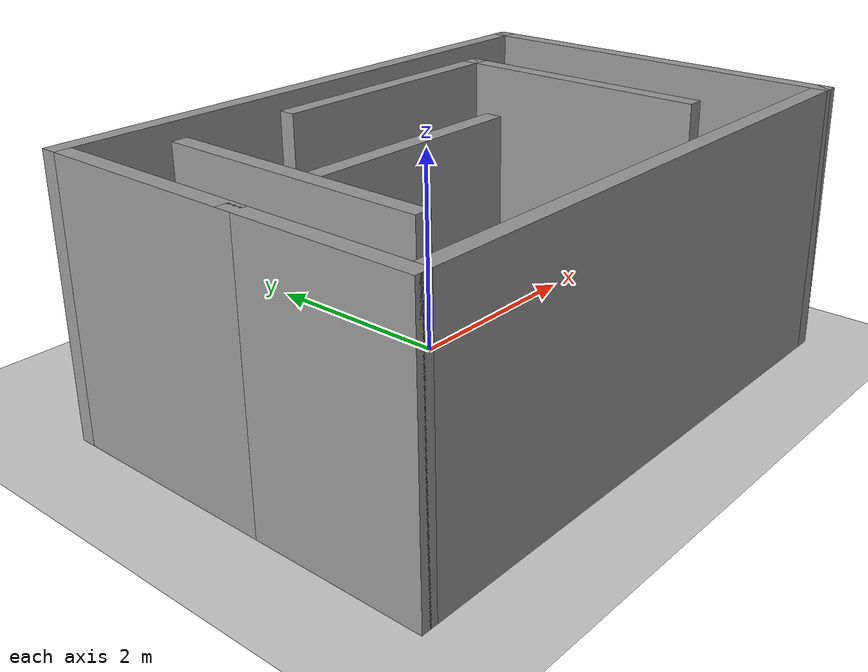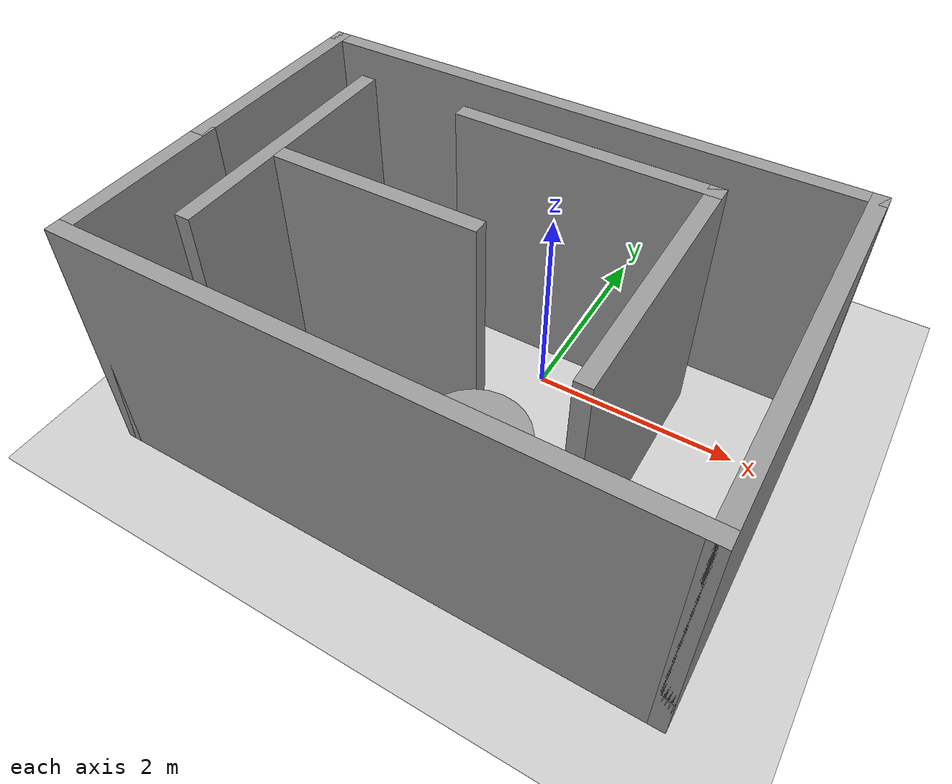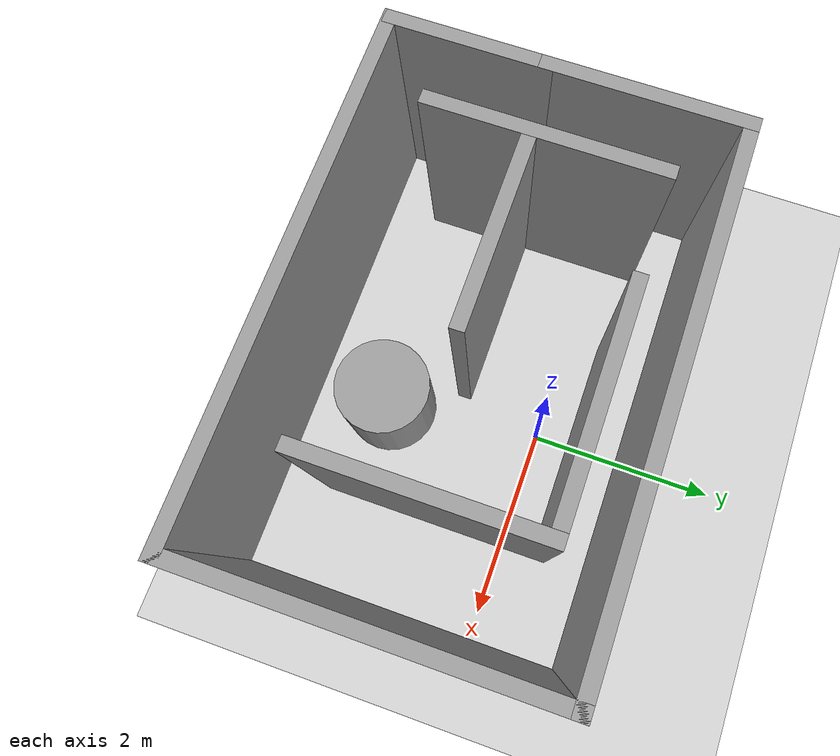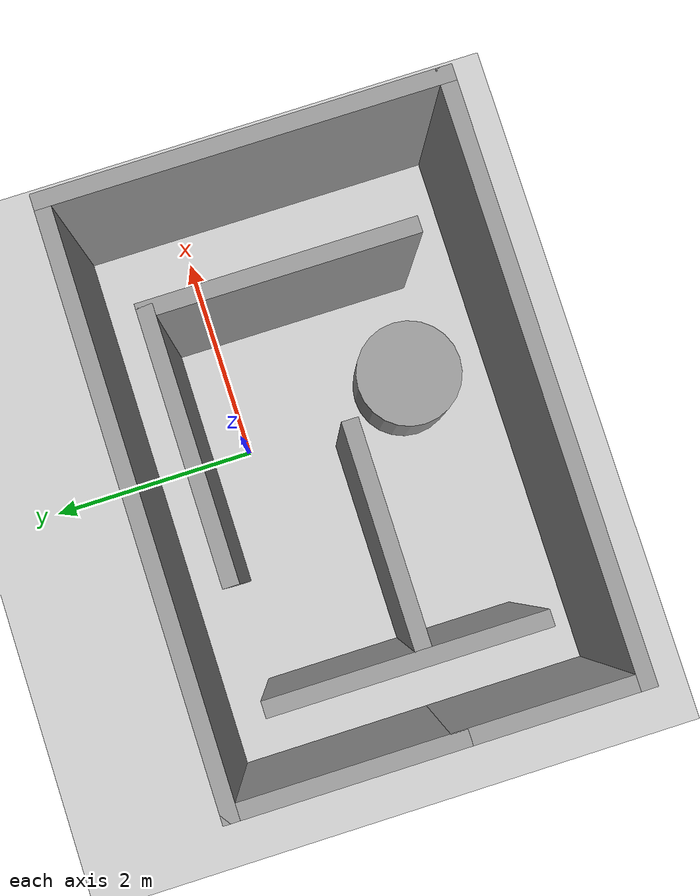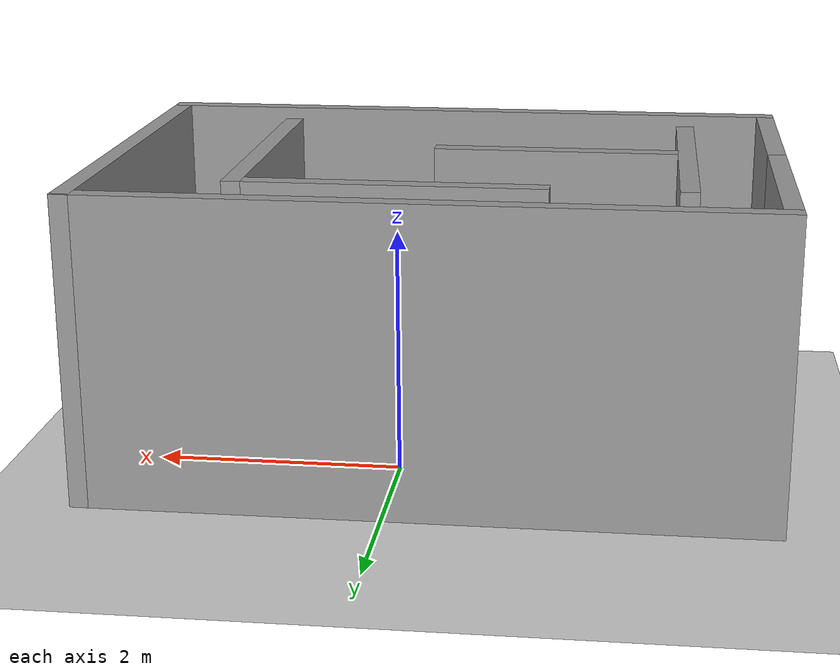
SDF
<sdf version="1.7">
 <world name="default">
  <light name="sun" type="directional">
   <pose>0 0 10 0 -0 0</pose>
   <diffuse>0.8 0.8 0.8 1</diffuse>
   <specular>0.2 0.2 0.2 1</specular>
   <attenuation>
    <range>1000</range>
    <constant>0.9</constant>
    <linear>0.01</linear>
    <quadratic>0.001</quadratic>
   </attenuation>
   <direction>-0.5 0.1 -0.9</direction>
   <spot><inner_angle>0</inner_angle><outer_angle>0</outer_angle><falloff>0</falloff></spot>
  </light>
  <model name="ground_plane">
   <static>1</static>
   <link name="link">
    <collision name="collision">
     <geometry><plane><normal>0 0 1</normal><size>100 100</size></plane></geometry>
     <surface>
      <contact><collide_bitmask>65535</collide_bitmask></contact>
      <friction><ode><mu>100</mu><mu2>50</mu2></ode></friction>
     </surface>
    </collision>
    <visual name="visual">
     <cast_shadows>0</cast_shadows>
     <geometry><plane><normal>0 0 1</normal><size>100 100</size></plane></geometry>
     <material>
      <script><uri>file://media/materials/scripts/gazebo.material</uri><name>Gazebo/Grey</name></script>
     </material>
    </visual>
   </link>
  </model>
  <gravity>0 0 -9.8</gravity>
  <magnetic_field>6e-06 2.3e-05 -4.2e-05</magnetic_field>
  <atmosphere type="adiabatic"/>
  <physics type="ode">
   <max_step_size>0.001</max_step_size>
   <real_time_factor>1</real_time_factor>
   <real_time_update_rate>1000</real_time_update_rate>
  </physics>
  <scene><ambient>0.4 0.4 0.4 1</ambient><background>0.7 0.7 0.7 1</background><shadows>1</shadows></scene>
  <spherical_coordinates>
   <surface_model>EARTH_WGS84</surface_model>
   <latitude_deg>0</latitude_deg>
   <longitude_deg>0</longitude_deg>
   <elevation>0</elevation>
   <heading_deg>0</heading_deg>
  </spherical_coordinates>
  <model name="maze">
   <pose>-0.305 -0.79 0 0 -0 0</pose>
   <link name="Wall_0">
    <collision name="Wall_0_Collision">
     <geometry><box><size>1.75 0.15 2.5</size></box></geometry>
     <pose>0 0 1.25 0 -0 0</pose>
    </collision>
    <visual name="Wall_0_Visual">
     <pose>0 0 1.25 0 -0 0</pose>
     <geometry><box><size>1.75 0.15 2.5</size></box></geometry>
     <material>
      <script><uri>file://media/materials/scripts/gazebo.material</uri><name>Gazebo/Grey</name></script>
      <ambient>1 1 1 1</ambient>
     </material>
     <meta><layer>0</layer></meta>
    </visual>
    <pose>-2.675 -1 0 0 -0 -1.5708</pose>
   </link>
   <link name="Wall_1">
    <collision name="Wall_1_Collision">
     <geometry><box><size>5.5 0.15 2.5</size></box></geometry>
     <pose>0 0 1.25 0 -0 0</pose>
    </collision>
    <visual name="Wall_1_Visual">
     <pose>0 0 1.25 0 -0 0</pose>
     <geometry><box><size>5.5 0.15 2.5</size></box></geometry>
     <material>
      <script><uri>file://media/materials/scripts/gazebo.material</uri><name>Gazebo/Grey</name></script>
      <ambient>1 1 1 1</ambient>
     </material>
     <meta><layer>0</layer></meta>
    </visual>
    <pose>-0 -1.8 0 0 -0 0</pose>
   </link>
   <link name="Wall_10">
    <collision name="Wall_10_Collision">
     <geometry><box><size>2.5 0.15 2.5</size></box></geometry>
     <pose>0 0 1.25 0 -0 0</pose>
    </collision>
    <visual name="Wall_10_Visual">
     <pose>0 0 1.25 0 -0 0</pose>
     <geometry><box><size>2.5 0.15 2.5</size></box></geometry>
     <material>
      <script><uri>file://media/materials/scripts/gazebo.material</uri><name>Gazebo/Grey</name></script>
      <ambient>1 1 1 1</ambient>
     </material>
     <meta><layer>0</layer></meta>
    </visual>
    <pose>0.33903 1.23085 0 0 -0 0</pose>
   </link>
   <link name="Wall_11">
    <collision name="Wall_11_Collision">
     <geometry><box><size>2.5 0.15 2.5</size></box></geometry>
     <pose>0 0 1.25 0 -0 0</pose>
    </collision>
    <visual name="Wall_11_Visual">
     <pose>0 0 1.25 0 -0 0</pose>
     <geometry><box><size>2.5 0.15 2.5</size></box></geometry>
     <material>
      <script><uri>file://media/materials/scripts/gazebo.material</uri><name>Gazebo/Grey</name></script>
      <ambient>1 1 1 1</ambient>
     </material>
     <meta><layer>0</layer></meta>
    </visual>
    <pose>1.51403 0.055853 0 0 -0 -1.5708</pose>
   </link>
   <link name="Wall_13">
    <collision name="Wall_13_Collision">
     <geometry><box><size>2 0.15 2.5</size></box></geometry>
     <pose>0 0 1.25 0 -0 0</pose>
    </collision>
    <visual name="Wall_13_Visual">
     <pose>0 0 1.25 0 -0 0</pose>
     <geometry><box><size>2 0.15 2.5</size></box></geometry>
     <material>
      <script><uri>file://media/materials/scripts/gazebo.material</uri><name>Gazebo/Grey</name></script>
      <ambient>1 1 1 1</ambient>
     </material>
     <meta><layer>0</layer></meta>
    </visual>
    <pose>-0.883164 -0.125757 0 0 -0 3.14159</pose>
   </link>
   <link name="Wall_3">
    <collision name="Wall_3_Collision">
     <geometry><box><size>3.75 0.15 2.5</size></box></geometry>
     <pose>0 0 1.25 0 -0 0</pose>
    </collision>
    <visual name="Wall_3_Visual">
     <pose>0 0 1.25 0 -0 0</pose>
     <geometry><box><size>3.75 0.15 2.5</size></box></geometry>
     <material>
      <script><uri>file://media/materials/scripts/gazebo.material</uri><name>Gazebo/Grey</name></script>
      <ambient>1 1 1 1</ambient>
     </material>
     <meta><layer>0</layer></meta>
    </visual>
    <pose>2.675 -0 0 0 -0 1.5708</pose>
   </link>
   <link name="Wall_4">
    <collision name="Wall_4_Collision">
     <geometry><box><size>5.5 0.15 2.5</size></box></geometry>
     <pose>0 0 1.25 0 -0 0</pose>
    </collision>
    <visual name="Wall_4_Visual">
     <pose>0 0 1.25 0 -0 0</pose>
     <geometry><box><size>5.5 0.15 2.5</size></box></geometry>
     <material>
      <script><uri>file://media/materials/scripts/gazebo.material</uri><name>Gazebo/Grey</name></script>
      <ambient>1 1 1 1</ambient>
     </material>
     <meta><layer>0</layer></meta>
    </visual>
    <pose>-0 1.8 0 0 -0 3.14159</pose>
   </link>
   <link name="Wall_5">
    <collision name="Wall_5_Collision">
     <geometry><box><size>2.15 0.15 2.5</size></box></geometry>
     <pose>0 0 1.25 0 -0 0</pose>
    </collision>
    <visual name="Wall_5_Visual">
     <pose>0 0 1.25 0 -0 0</pose>
     <geometry><box><size>2.15 0.15 2.5</size></box></geometry>
     <material>
      <script><uri>file://media/materials/scripts/gazebo.material</uri><name>Gazebo/Grey</name></script>
      <ambient>1 1 1 1</ambient>
     </material>
     <meta><layer>0</layer></meta>
    </visual>
    <pose>-2.675 0.8 0 0 -0 -1.5708</pose>
   </link>
   <link name="Wall_8">
    <collision name="Wall_8_Collision">
     <geometry><box><size>2.5 0.15 2.5</size></box></geometry>
     <pose>0 0 1.25 0 -0 0</pose>
    </collision>
    <visual name="Wall_8_Visual">
     <pose>0 0 1.25 0 -0 0</pose>
     <geometry><box><size>2.5 0.15 2.5</size></box></geometry>
     <material>
      <script><uri>file://media/materials/scripts/gazebo.material</uri><name>Gazebo/Grey</name></script>
      <ambient>1 1 1 1</ambient>
     </material>
     <meta><layer>0</layer></meta>
    </visual>
    <pose>-1.95318 0.029253 0 0 -0 -1.5708</pose>
   </link>
   <static>1</static>
  </model>
  <model name="unit_cylinder">
   <pose>0.187334 -1.66247 0.5 0 -0 0</pose>
   <link name="link">
    <inertial>
     <mass>1</mass>
     <inertia><ixx>0.145833</ixx><ixy>0</ixy><ixz>0</ixz><iyy>0.145833</iyy><iyz>0</iyz><izz>0.125</izz></inertia>
    </inertial>
    <collision name="collision">
     <geometry><cylinder><radius>0.5</radius><length>1</length></cylinder></geometry>
    </collision>
    <visual name="visual">
     <geometry><cylinder><radius>0.5</radius><length>1</length></cylinder></geometry>
     <material>
      <script><name>Gazebo/Grey</name><uri>file://media/materials/scripts/gazebo.material</uri></script>
     </material>
    </visual>
   </link>
  </model>
 </world>
</sdf>
